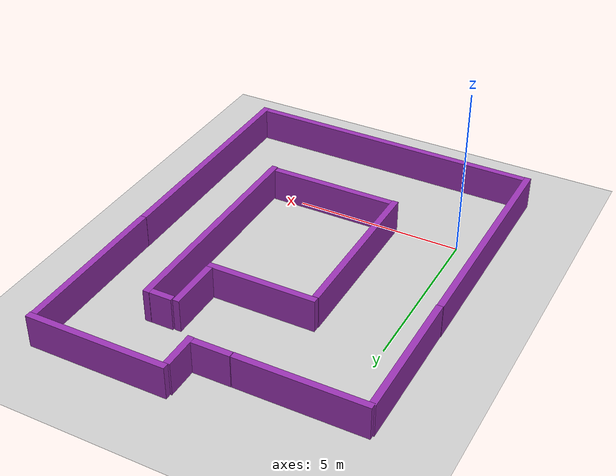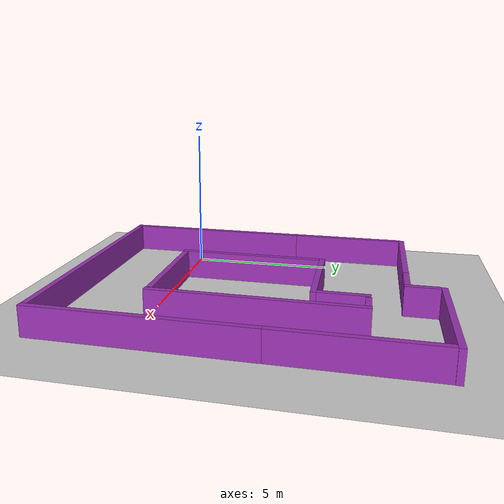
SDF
<sdf version="1.6">
 <world name="default">
  <light name="sun" type="directional">
   <pose>0 0 10 0 -0 0</pose>
   <diffuse>0.8 0.8 0.8 1</diffuse>
   <specular>0.1 0.1 0.1 1</specular>
   <attenuation>
    <range>1000</range>
    <constant>0.9</constant>
    <linear>0.01</linear>
    <quadratic>0.001</quadratic>
   </attenuation>
   <direction>-0.5 0.5 -1</direction>
  </light>
  <model name="ground_plane">
   <static>1</static>
   <link name="link">
    <collision name="collision">
     <geometry><plane><normal>0 0 1</normal><size>100 100</size></plane></geometry>
     <surface><friction><ode><mu>100</mu><mu2>50</mu2></ode></friction></surface>
    </collision>
    <visual name="visual">
     <cast_shadows>0</cast_shadows>
     <geometry><plane><normal>0 0 1</normal><size>100 100</size></plane></geometry>
     <material>
      <script><uri>file://media/materials/scripts/gazebo.material</uri><name>Gazebo/Grey</name></script>
     </material>
    </visual>
   </link>
  </model>
  <gravity>0 0 -9.8</gravity>
  <magnetic_field>6e-06 2.3e-05 -4.2e-05</magnetic_field>
  <atmosphere type="adiabatic"/>
  <physics name="default_physics" default="0" type="ode">
   <max_step_size>0.001</max_step_size>
   <real_time_factor>1</real_time_factor>
   <real_time_update_rate>1000</real_time_update_rate>
  </physics>
  <scene><ambient>0.4 0.4 0.4 1</ambient><background>0.7 0.7 0.7 1</background><shadows>1</shadows></scene>
  <spherical_coordinates>
   <surface_model>EARTH_WGS84</surface_model>
   <latitude_deg>0</latitude_deg>
   <longitude_deg>0</longitude_deg>
   <elevation>0</elevation>
   <heading_deg>0</heading_deg>
  </spherical_coordinates>
  <model name="wall_0">
   <link name="link">
    <inertial>
     <mass>20</mass>
     <inertia>
      <ixx>0.166667</ixx>
      <ixy>0</ixy>
      <ixz>0</ixz>
      <iyy>0.166667</iyy>
      <iyz>0</iyz>
      <izz>0.166667</izz>
     </inertia>
    </inertial>
    <visual name="visual">
     <geometry><box><size>0.194864 5.01167 1</size></box></geometry>
     <material>
      <script><name>Gazebo/Purple</name><uri>file://media/materials/scripts/gazebo.material</uri></script>
     </material>
    </visual>
    <collision name="collision">
     <geometry><box><size>0.194864 5.01167 1</size></box></geometry>
     <surface>
      <friction>
       <ode><mu>1</mu><mu2>1</mu2><fdir1>0 0 0</fdir1><slip1>0</slip1><slip2>0</slip2></ode>
       <torsional>
        <coefficient>1</coefficient>
        <patch_radius>0</patch_radius>
        <surface_radius>0</surface_radius>
        <use_patch_radius>1</use_patch_radius>
        <ode><slip>0</slip></ode>
       </torsional>
      </friction>
      <bounce><restitution_coefficient>0</restitution_coefficient><threshold>1e+06</threshold></bounce>
      <contact>
       <collide_without_contact>0</collide_without_contact>
       <collide_without_contact_bitmask>1</collide_without_contact_bitmask>
       <collide_bitmask>1</collide_bitmask>
       <ode>
        <soft_cfm>0</soft_cfm>
        <soft_erp>0.2</soft_erp>
        <kp>1e+13</kp>
        <kd>1</kd>
        <max_vel>0.01</max_vel>
        <min_depth>0</min_depth>
       </ode>
       <bullet>
        <split_impulse>1</split_impulse>
        <split_impulse_penetration_threshold>-0.01</split_impulse_penetration_threshold>
        <soft_cfm>0</soft_cfm>
        <soft_erp>0.2</soft_erp>
        <kp>1e+13</kp>
        <kd>1</kd>
       </bullet>
      </contact>
     </surface>
    </collision>
   </link>
   <static>1</static>
   <pose>2.00319 2.44327 0.496151 -0.000854 0 0.000614</pose>
  </model>
  <model name="wall_0_clone">
   <link name="link">
    <inertial>
     <mass>20</mass>
     <inertia>
      <ixx>0.166667</ixx>
      <ixy>0</ixy>
      <ixz>0</ixz>
      <iyy>0.166667</iyy>
      <iyz>0</iyz>
      <izz>0.166667</izz>
     </inertia>
    </inertial>
    <visual name="visual">
     <geometry><box><size>0.194864 6.84354 1</size></box></geometry>
     <material>
      <script><name>Gazebo/Purple</name><uri>file://media/materials/scripts/gazebo.material</uri></script>
     </material>
    </visual>
    <collision name="collision">
     <geometry><box><size>0.194864 6.84354 1</size></box></geometry>
     <surface>
      <friction>
       <ode><mu>1</mu><mu2>1</mu2><fdir1>0 0 0</fdir1><slip1>0</slip1><slip2>0</slip2></ode>
       <torsional>
        <coefficient>1</coefficient>
        <patch_radius>0</patch_radius>
        <surface_radius>0</surface_radius>
        <use_patch_radius>1</use_patch_radius>
        <ode><slip>0</slip></ode>
       </torsional>
      </friction>
      <bounce><restitution_coefficient>0</restitution_coefficient><threshold>1e+06</threshold></bounce>
      <contact>
       <collide_without_contact>0</collide_without_contact>
       <collide_without_contact_bitmask>1</collide_without_contact_bitmask>
       <collide_bitmask>1</collide_bitmask>
       <ode>
        <soft_cfm>0</soft_cfm>
        <soft_erp>0.2</soft_erp>
        <kp>1e+13</kp>
        <kd>1</kd>
        <max_vel>0.01</max_vel>
        <min_depth>0</min_depth>
       </ode>
       <bullet>
        <split_impulse>1</split_impulse>
        <split_impulse_penetration_threshold>-0.01</split_impulse_penetration_threshold>
        <soft_cfm>0</soft_cfm>
        <soft_erp>0.2</soft_erp>
        <kp>1e+13</kp>
        <kd>1</kd>
       </bullet>
      </contact>
     </surface>
    </collision>
   </link>
   <static>1</static>
   <pose>-0.973884 0.357165 0.496151 -0.000854 0 0.000614</pose>
  </model>
  <model name="wall_0_clone_0">
   <link name="link">
    <inertial>
     <mass>20</mass>
     <inertia>
      <ixx>0.166667</ixx>
      <ixy>0</ixy>
      <ixz>0</ixz>
      <iyy>0.166667</iyy>
      <iyz>0</iyz>
      <izz>0.166667</izz>
     </inertia>
    </inertial>
    <visual name="visual">
     <geometry><box><size>0.194864 8.79112 1</size></box></geometry>
     <material>
      <script><name>Gazebo/Purple</name><uri>file://media/materials/scripts/gazebo.material</uri></script>
     </material>
    </visual>
    <collision name="collision">
     <geometry><box><size>0.194864 8.79112 1</size></box></geometry>
     <surface>
      <friction>
       <ode><mu>1</mu><mu2>1</mu2><fdir1>0 0 0</fdir1><slip1>0</slip1><slip2>0</slip2></ode>
       <torsional>
        <coefficient>1</coefficient>
        <patch_radius>0</patch_radius>
        <surface_radius>0</surface_radius>
        <use_patch_radius>1</use_patch_radius>
        <ode><slip>0</slip></ode>
       </torsional>
      </friction>
      <bounce><restitution_coefficient>0</restitution_coefficient><threshold>1e+06</threshold></bounce>
      <contact>
       <collide_without_contact>0</collide_without_contact>
       <collide_without_contact_bitmask>1</collide_without_contact_bitmask>
       <collide_bitmask>1</collide_bitmask>
       <ode>
        <soft_cfm>0</soft_cfm>
        <soft_erp>0.2</soft_erp>
        <kp>1e+13</kp>
        <kd>1</kd>
        <max_vel>0.01</max_vel>
        <min_depth>0</min_depth>
       </ode>
       <bullet>
        <split_impulse>1</split_impulse>
        <split_impulse_penetration_threshold>-0.01</split_impulse_penetration_threshold>
        <soft_cfm>0</soft_cfm>
        <soft_erp>0.2</soft_erp>
        <kp>1e+13</kp>
        <kd>1</kd>
       </bullet>
      </contact>
     </surface>
    </collision>
   </link>
   <static>1</static>
   <pose>3.51666 -2.98106 0.496151 4e-06 -0.000854 -1.57514</pose>
  </model>
  <model name="wall_0_clone_clone">
   <link name="link">
    <inertial>
     <mass>20</mass>
     <inertia>
      <ixx>0.166667</ixx>
      <ixy>0</ixy>
      <ixz>0</ixz>
      <iyy>0.166667</iyy>
      <iyz>0</iyz>
      <izz>0.166667</izz>
     </inertia>
    </inertial>
    <visual name="visual">
     <geometry><box><size>0.194864 7.13181 1</size></box></geometry>
     <material>
      <script><name>Gazebo/Purple</name><uri>file://media/materials/scripts/gazebo.material</uri></script>
     </material>
    </visual>
    <collision name="collision">
     <geometry><box><size>0.194864 7.13181 1</size></box></geometry>
     <surface>
      <friction>
       <ode><mu>1</mu><mu2>1</mu2><fdir1>0 0 0</fdir1><slip1>0</slip1><slip2>0</slip2></ode>
       <torsional>
        <coefficient>1</coefficient>
        <patch_radius>0</patch_radius>
        <surface_radius>0</surface_radius>
        <use_patch_radius>1</use_patch_radius>
        <ode><slip>0</slip></ode>
       </torsional>
      </friction>
      <bounce><restitution_coefficient>0</restitution_coefficient><threshold>1e+06</threshold></bounce>
      <contact>
       <collide_without_contact>0</collide_without_contact>
       <collide_without_contact_bitmask>1</collide_without_contact_bitmask>
       <collide_bitmask>1</collide_bitmask>
       <ode>
        <soft_cfm>0</soft_cfm>
        <soft_erp>0.2</soft_erp>
        <kp>1e+13</kp>
        <kd>1</kd>
        <max_vel>0.01</max_vel>
        <min_depth>0</min_depth>
       </ode>
       <bullet>
        <split_impulse>1</split_impulse>
        <split_impulse_penetration_threshold>-0.01</split_impulse_penetration_threshold>
        <soft_cfm>0</soft_cfm>
        <soft_erp>0.2</soft_erp>
        <kp>1e+13</kp>
        <kd>1</kd>
       </bullet>
      </contact>
     </surface>
    </collision>
   </link>
   <static>1</static>
   <pose>7.99008 0.464173 0.49617 -0.000854 0 0.000614</pose>
  </model>
  <model name="wall_0_clone_1">
   <link name="link">
    <inertial>
     <mass>20</mass>
     <inertia>
      <ixx>0.166667</ixx>
      <ixy>0</ixy>
      <ixz>0</ixz>
      <iyy>0.166667</iyy>
      <iyz>0</iyz>
      <izz>0.166667</izz>
     </inertia>
    </inertial>
    <visual name="visual">
     <geometry><box><size>0.194864 3.77565 1</size></box></geometry>
     <material>
      <script><name>Gazebo/Purple</name><uri>file://media/materials/scripts/gazebo.material</uri></script>
     </material>
    </visual>
    <collision name="collision">
     <geometry><box><size>0.194864 3.77565 1</size></box></geometry>
     <surface>
      <friction>
       <ode><mu>1</mu><mu2>1</mu2><fdir1>0 0 0</fdir1><slip1>0</slip1><slip2>0</slip2></ode>
       <torsional>
        <coefficient>1</coefficient>
        <patch_radius>0</patch_radius>
        <surface_radius>0</surface_radius>
        <use_patch_radius>1</use_patch_radius>
        <ode><slip>0</slip></ode>
       </torsional>
      </friction>
      <bounce><restitution_coefficient>0</restitution_coefficient><threshold>1e+06</threshold></bounce>
      <contact>
       <collide_without_contact>0</collide_without_contact>
       <collide_without_contact_bitmask>1</collide_without_contact_bitmask>
       <collide_bitmask>1</collide_bitmask>
       <ode>
        <soft_cfm>0</soft_cfm>
        <soft_erp>0.2</soft_erp>
        <kp>1e+13</kp>
        <kd>1</kd>
        <max_vel>0.01</max_vel>
        <min_depth>0</min_depth>
       </ode>
       <bullet>
        <split_impulse>1</split_impulse>
        <split_impulse_penetration_threshold>-0.01</split_impulse_penetration_threshold>
        <soft_cfm>0</soft_cfm>
        <soft_erp>0.2</soft_erp>
        <kp>1e+13</kp>
        <kd>1</kd>
       </bullet>
      </contact>
     </surface>
    </collision>
   </link>
   <static>1</static>
   <pose>3.99078 0.051953 0.496151 -2e-06 -0.000854 -1.56829</pose>
  </model>
  <model name="wall_0_clone_2">
   <link name="link">
    <inertial>
     <mass>20</mass>
     <inertia>
      <ixx>0.166667</ixx>
      <ixy>0</ixy>
      <ixz>0</ixz>
      <iyy>0.166667</iyy>
      <iyz>0</iyz>
      <izz>0.166667</izz>
     </inertia>
    </inertial>
    <visual name="visual">
     <geometry><box><size>0.194864 6.89977 1</size></box></geometry>
     <material>
      <script><name>Gazebo/Purple</name><uri>file://media/materials/scripts/gazebo.material</uri></script>
     </material>
    </visual>
    <collision name="collision">
     <geometry><box><size>0.194864 6.89977 1</size></box></geometry>
     <surface>
      <friction>
       <ode><mu>1</mu><mu2>1</mu2><fdir1>0 0 0</fdir1><slip1>0</slip1><slip2>0</slip2></ode>
       <torsional>
        <coefficient>1</coefficient>
        <patch_radius>0</patch_radius>
        <surface_radius>0</surface_radius>
        <use_patch_radius>1</use_patch_radius>
        <ode><slip>0</slip></ode>
       </torsional>
      </friction>
      <bounce><restitution_coefficient>0</restitution_coefficient><threshold>1e+06</threshold></bounce>
      <contact>
       <collide_without_contact>0</collide_without_contact>
       <collide_without_contact_bitmask>1</collide_without_contact_bitmask>
       <collide_bitmask>1</collide_bitmask>
       <ode>
        <soft_cfm>0</soft_cfm>
        <soft_erp>0.2</soft_erp>
        <kp>1e+13</kp>
        <kd>1</kd>
        <max_vel>0.01</max_vel>
        <min_depth>0</min_depth>
       </ode>
       <bullet>
        <split_impulse>1</split_impulse>
        <split_impulse_penetration_threshold>-0.01</split_impulse_penetration_threshold>
        <soft_cfm>0</soft_cfm>
        <soft_erp>0.2</soft_erp>
        <kp>1e+13</kp>
        <kd>1</kd>
       </bullet>
      </contact>
     </surface>
    </collision>
   </link>
   <static>1</static>
   <pose>5.99472 3.38096 0.496151 -0.000854 0 0.000614</pose>
  </model>
  <model name="wall_0_clone_2_clone">
   <link name="link">
    <inertial>
     <mass>20</mass>
     <inertia>
      <ixx>0.166667</ixx>
      <ixy>0</ixy>
      <ixz>0</ixz>
      <iyy>0.166667</iyy>
      <iyz>0</iyz>
      <izz>0.166667</izz>
     </inertia>
    </inertial>
    <visual name="visual">
     <geometry><box><size>0.194864 5.01167 1</size></box></geometry>
     <material>
      <script><name>Gazebo/Purple</name><uri>file://media/materials/scripts/gazebo.material</uri></script>
     </material>
    </visual>
    <collision name="collision">
     <geometry><box><size>0.194864 5.01167 1</size></box></geometry>
     <surface>
      <friction>
       <ode><mu>1</mu><mu2>1</mu2><fdir1>0 0 0</fdir1><slip1>0</slip1><slip2>0</slip2></ode>
       <torsional>
        <coefficient>1</coefficient>
        <patch_radius>0</patch_radius>
        <surface_radius>0</surface_radius>
        <use_patch_radius>1</use_patch_radius>
        <ode><slip>0</slip></ode>
       </torsional>
      </friction>
      <bounce><restitution_coefficient>0</restitution_coefficient><threshold>1e+06</threshold></bounce>
      <contact>
       <collide_without_contact>0</collide_without_contact>
       <collide_without_contact_bitmask>1</collide_without_contact_bitmask>
       <collide_bitmask>1</collide_bitmask>
       <ode>
        <soft_cfm>0</soft_cfm>
        <soft_erp>0.2</soft_erp>
        <kp>1e+13</kp>
        <kd>1</kd>
        <max_vel>0.01</max_vel>
        <min_depth>0</min_depth>
       </ode>
       <bullet>
        <split_impulse>1</split_impulse>
        <split_impulse_penetration_threshold>-0.01</split_impulse_penetration_threshold>
        <soft_cfm>0</soft_cfm>
        <soft_erp>0.2</soft_erp>
        <kp>1e+13</kp>
        <kd>1</kd>
       </bullet>
      </contact>
     </surface>
    </collision>
   </link>
   <static>1</static>
   <pose>7.9897 6.532 0.496151 -0.000854 0 0.000614</pose>
  </model>
  <model name="wall_0_clone_1_clone">
   <link name="link">
    <inertial>
     <mass>20</mass>
     <inertia>
      <ixx>0.166667</ixx>
      <ixy>0</ixy>
      <ixz>0</ixz>
      <iyy>0.166667</iyy>
      <iyz>0</iyz>
      <izz>0.166667</izz>
     </inertia>
    </inertial>
    <visual name="visual">
     <geometry><box><size>0.194864 4.17266 1</size></box></geometry>
     <material>
      <script><name>Gazebo/Purple</name><uri>file://media/materials/scripts/gazebo.material</uri></script>
     </material>
    </visual>
    <collision name="collision">
     <geometry><box><size>0.194864 4.17266 1</size></box></geometry>
     <surface>
      <friction>
       <ode><mu>1</mu><mu2>1</mu2><fdir1>0 0 0</fdir1><slip1>0</slip1><slip2>0</slip2></ode>
       <torsional>
        <coefficient>1</coefficient>
        <patch_radius>0</patch_radius>
        <surface_radius>0</surface_radius>
        <use_patch_radius>1</use_patch_radius>
        <ode><slip>0</slip></ode>
       </torsional>
      </friction>
      <bounce><restitution_coefficient>0</restitution_coefficient><threshold>1e+06</threshold></bounce>
      <contact>
       <collide_without_contact>0</collide_without_contact>
       <collide_without_contact_bitmask>1</collide_without_contact_bitmask>
       <collide_bitmask>1</collide_bitmask>
       <ode>
        <soft_cfm>0</soft_cfm>
        <soft_erp>0.2</soft_erp>
        <kp>1e+13</kp>
        <kd>1</kd>
        <max_vel>0.01</max_vel>
        <min_depth>0</min_depth>
       </ode>
       <bullet>
        <split_impulse>1</split_impulse>
        <split_impulse_penetration_threshold>-0.01</split_impulse_penetration_threshold>
        <soft_cfm>0</soft_cfm>
        <soft_erp>0.2</soft_erp>
        <kp>1e+13</kp>
        <kd>1</kd>
       </bullet>
      </contact>
     </surface>
    </collision>
   </link>
   <static>1</static>
   <pose>6.01832 8.98961 0.496151 -2e-06 -0.000854 -1.56829</pose>
  </model>
  <model name="wall_0_clone_1_clone_clone">
   <link name="link">
    <inertial>
     <mass>20</mass>
     <inertia>
      <ixx>0.166667</ixx>
      <ixy>0</ixy>
      <ixz>0</ixz>
      <iyy>0.166667</iyy>
      <iyz>0</iyz>
      <izz>0.166667</izz>
     </inertia>
    </inertial>
    <visual name="visual">
     <geometry><box><size>0.194864 1.12427 1</size></box></geometry>
     <material>
      <script><name>Gazebo/Purple</name><uri>file://media/materials/scripts/gazebo.material</uri></script>
     </material>
    </visual>
    <collision name="collision">
     <geometry><box><size>0.194864 1.12427 1</size></box></geometry>
     <surface>
      <friction>
       <ode><mu>1</mu><mu2>1</mu2><fdir1>0 0 0</fdir1><slip1>0</slip1><slip2>0</slip2></ode>
       <torsional>
        <coefficient>1</coefficient>
        <patch_radius>0</patch_radius>
        <surface_radius>0</surface_radius>
        <use_patch_radius>1</use_patch_radius>
        <ode><slip>0</slip></ode>
       </torsional>
      </friction>
      <bounce><restitution_coefficient>0</restitution_coefficient><threshold>1e+06</threshold></bounce>
      <contact>
       <collide_without_contact>0</collide_without_contact>
       <collide_without_contact_bitmask>1</collide_without_contact_bitmask>
       <collide_bitmask>1</collide_bitmask>
       <ode>
        <soft_cfm>0</soft_cfm>
        <soft_erp>0.2</soft_erp>
        <kp>1e+13</kp>
        <kd>1</kd>
        <max_vel>0.01</max_vel>
        <min_depth>0</min_depth>
       </ode>
       <bullet>
        <split_impulse>1</split_impulse>
        <split_impulse_penetration_threshold>-0.01</split_impulse_penetration_threshold>
        <soft_cfm>0</soft_cfm>
        <soft_erp>0.2</soft_erp>
        <kp>1e+13</kp>
        <kd>1</kd>
       </bullet>
      </contact>
     </surface>
    </collision>
   </link>
   <static>1</static>
   <pose>3.98319 8.33408 0.496151 0.000854 -1e-06 -3.14078</pose>
  </model>
  <model name="wall_0_clone_1_clone_clone_clone">
   <link name="link">
    <inertial>
     <mass>20</mass>
     <inertia>
      <ixx>0.166667</ixx>
      <ixy>0</ixy>
      <ixz>0</ixz>
      <iyy>0.166667</iyy>
      <iyz>0</iyz>
      <izz>0.166667</izz>
     </inertia>
    </inertial>
    <visual name="visual">
     <geometry><box><size>0.194864 1.12427 1</size></box></geometry>
     <material>
      <script><name>Gazebo/Purple</name><uri>file://media/materials/scripts/gazebo.material</uri></script>
     </material>
    </visual>
    <collision name="collision">
     <geometry><box><size>0.194864 1.12427 1</size></box></geometry>
     <surface>
      <friction>
       <ode><mu>1</mu><mu2>1</mu2><fdir1>0 0 0</fdir1><slip1>0</slip1><slip2>0</slip2></ode>
       <torsional>
        <coefficient>1</coefficient>
        <patch_radius>0</patch_radius>
        <surface_radius>0</surface_radius>
        <use_patch_radius>1</use_patch_radius>
        <ode><slip>0</slip></ode>
       </torsional>
      </friction>
      <bounce><restitution_coefficient>0</restitution_coefficient><threshold>1e+06</threshold></bounce>
      <contact>
       <collide_without_contact>0</collide_without_contact>
       <collide_without_contact_bitmask>1</collide_without_contact_bitmask>
       <collide_bitmask>1</collide_bitmask>
       <ode>
        <soft_cfm>0</soft_cfm>
        <soft_erp>0.2</soft_erp>
        <kp>1e+13</kp>
        <kd>1</kd>
        <max_vel>0.01</max_vel>
        <min_depth>0</min_depth>
       </ode>
       <bullet>
        <split_impulse>1</split_impulse>
        <split_impulse_penetration_threshold>-0.01</split_impulse_penetration_threshold>
        <soft_cfm>0</soft_cfm>
        <soft_erp>0.2</soft_erp>
        <kp>1e+13</kp>
        <kd>1</kd>
       </bullet>
      </contact>
     </surface>
    </collision>
   </link>
   <static>1</static>
   <pose>3.32737 7.87852 0.496155 2e-06 0.000854 1.57332</pose>
  </model>
  <model name="wall_0_clone_1_clone_0">
   <link name="link">
    <inertial>
     <mass>20</mass>
     <inertia>
      <ixx>0.166667</ixx>
      <ixy>0</ixy>
      <ixz>0</ixz>
      <iyy>0.166667</iyy>
      <iyz>0</iyz>
      <izz>0.166667</izz>
     </inertia>
    </inertial>
    <visual name="visual">
     <geometry><box><size>0.194864 3.26075 1</size></box></geometry>
     <material>
      <script><name>Gazebo/Purple</name><uri>file://media/materials/scripts/gazebo.material</uri></script>
     </material>
    </visual>
    <collision name="collision">
     <geometry><box><size>0.194864 3.26075 1</size></box></geometry>
     <surface>
      <friction>
       <ode><mu>1</mu><mu2>1</mu2><fdir1>0 0 0</fdir1><slip1>0</slip1><slip2>0</slip2></ode>
       <torsional>
        <coefficient>1</coefficient>
        <patch_radius>0</patch_radius>
        <surface_radius>0</surface_radius>
        <use_patch_radius>1</use_patch_radius>
        <ode><slip>0</slip></ode>
       </torsional>
      </friction>
      <bounce><restitution_coefficient>0</restitution_coefficient><threshold>1e+06</threshold></bounce>
      <contact>
       <collide_without_contact>0</collide_without_contact>
       <collide_without_contact_bitmask>1</collide_without_contact_bitmask>
       <collide_bitmask>1</collide_bitmask>
       <ode>
        <soft_cfm>0</soft_cfm>
        <soft_erp>0.2</soft_erp>
        <kp>1e+13</kp>
        <kd>1</kd>
        <max_vel>0.01</max_vel>
        <min_depth>0</min_depth>
       </ode>
       <bullet>
        <split_impulse>1</split_impulse>
        <split_impulse_penetration_threshold>-0.01</split_impulse_penetration_threshold>
        <soft_cfm>0</soft_cfm>
        <soft_erp>0.2</soft_erp>
        <kp>1e+13</kp>
        <kd>1</kd>
       </bullet>
      </contact>
     </surface>
    </collision>
   </link>
   <static>1</static>
   <pose>3.54938 5.05542 0.496151 -2e-06 -0.000854 -1.56829</pose>
  </model>
  <model name="wall_0_clone_1_clone_clone_clone_0">
   <link name="link">
    <inertial>
     <mass>20</mass>
     <inertia>
      <ixx>0.166667</ixx>
      <ixy>0</ixy>
      <ixz>0</ixz>
      <iyy>0.166667</iyy>
      <iyz>0</iyz>
      <izz>0.166667</izz>
     </inertia>
    </inertial>
    <visual name="visual">
     <geometry><box><size>0.194864 1.64284 1</size></box></geometry>
     <material>
      <script><name>Gazebo/Purple</name><uri>file://media/materials/scripts/gazebo.material</uri></script>
     </material>
    </visual>
    <collision name="collision">
     <geometry><box><size>0.194864 1.64284 1</size></box></geometry>
     <surface>
      <friction>
       <ode><mu>1</mu><mu2>1</mu2><fdir1>0 0 0</fdir1><slip1>0</slip1><slip2>0</slip2></ode>
       <torsional>
        <coefficient>1</coefficient>
        <patch_radius>0</patch_radius>
        <surface_radius>0</surface_radius>
        <use_patch_radius>1</use_patch_radius>
        <ode><slip>0</slip></ode>
       </torsional>
      </friction>
      <bounce><restitution_coefficient>0</restitution_coefficient><threshold>1e+06</threshold></bounce>
      <contact>
       <collide_without_contact>0</collide_without_contact>
       <collide_without_contact_bitmask>1</collide_without_contact_bitmask>
       <collide_bitmask>1</collide_bitmask>
       <ode>
        <soft_cfm>0</soft_cfm>
        <soft_erp>0.2</soft_erp>
        <kp>1e+13</kp>
        <kd>1</kd>
        <max_vel>0.01</max_vel>
        <min_depth>0</min_depth>
       </ode>
       <bullet>
        <split_impulse>1</split_impulse>
        <split_impulse_penetration_threshold>-0.01</split_impulse_penetration_threshold>
        <soft_cfm>0</soft_cfm>
        <soft_erp>0.2</soft_erp>
        <kp>1e+13</kp>
        <kd>1</kd>
       </bullet>
      </contact>
     </surface>
    </collision>
   </link>
   <static>1</static>
   <pose>5.09192 5.96705 0.496151 0.000854 -1e-06 -3.14078</pose>
  </model>
  <model name="wall_0_clone_1_clone_clone_clone_clone">
   <link name="link">
    <inertial>
     <mass>20</mass>
     <inertia>
      <ixx>0.166667</ixx>
      <ixy>0</ixy>
      <ixz>0</ixz>
      <iyy>0.166667</iyy>
      <iyz>0</iyz>
      <izz>0.166667</izz>
     </inertia>
    </inertial>
    <visual name="visual">
     <geometry><box><size>0.194864 0.684707 1</size></box></geometry>
     <material>
      <script><name>Gazebo/Purple</name><uri>file://media/materials/scripts/gazebo.material</uri></script>
     </material>
    </visual>
    <collision name="collision">
     <geometry><box><size>0.194864 0.684707 1</size></box></geometry>
     <surface>
      <friction>
       <ode><mu>1</mu><mu2>1</mu2><fdir1>0 0 0</fdir1><slip1>0</slip1><slip2>0</slip2></ode>
       <torsional>
        <coefficient>1</coefficient>
        <patch_radius>0</patch_radius>
        <surface_radius>0</surface_radius>
        <use_patch_radius>1</use_patch_radius>
        <ode><slip>0</slip></ode>
       </torsional>
      </friction>
      <bounce><restitution_coefficient>0</restitution_coefficient><threshold>1e+06</threshold></bounce>
      <contact>
       <collide_without_contact>0</collide_without_contact>
       <collide_without_contact_bitmask>1</collide_without_contact_bitmask>
       <collide_bitmask>1</collide_bitmask>
       <ode>
        <soft_cfm>0</soft_cfm>
        <soft_erp>0.2</soft_erp>
        <kp>1e+13</kp>
        <kd>1</kd>
        <max_vel>0.01</max_vel>
        <min_depth>0</min_depth>
       </ode>
       <bullet>
        <split_impulse>1</split_impulse>
        <split_impulse_penetration_threshold>-0.01</split_impulse_penetration_threshold>
        <soft_cfm>0</soft_cfm>
        <soft_erp>0.2</soft_erp>
        <kp>1e+13</kp>
        <kd>1</kd>
       </bullet>
      </contact>
     </surface>
    </collision>
   </link>
   <static>1</static>
   <pose>5.56611 6.72252 0.485958 2e-06 0.000854 1.57332</pose>
  </model>
  <model name="wall_0_clone_1_clone_1">
   <link name="link">
    <inertial>
     <mass>20</mass>
     <inertia>
      <ixx>0.166667</ixx>
      <ixy>0</ixy>
      <ixz>0</ixz>
      <iyy>0.166667</iyy>
      <iyz>0</iyz>
      <izz>0.166667</izz>
     </inertia>
    </inertial>
    <visual name="visual">
     <geometry><box><size>0.194864 3.77565 1</size></box></geometry>
     <material>
      <script><name>Gazebo/Purple</name><uri>file://media/materials/scripts/gazebo.material</uri></script>
     </material>
    </visual>
    <collision name="collision">
     <geometry><box><size>0.194864 3.77565 1</size></box></geometry>
     <surface>
      <friction>
       <ode><mu>1</mu><mu2>1</mu2><fdir1>0 0 0</fdir1><slip1>0</slip1><slip2>0</slip2></ode>
       <torsional>
        <coefficient>1</coefficient>
        <patch_radius>0</patch_radius>
        <surface_radius>0</surface_radius>
        <use_patch_radius>1</use_patch_radius>
        <ode><slip>0</slip></ode>
       </torsional>
      </friction>
      <bounce><restitution_coefficient>0</restitution_coefficient><threshold>1e+06</threshold></bounce>
      <contact>
       <collide_without_contact>0</collide_without_contact>
       <collide_without_contact_bitmask>1</collide_without_contact_bitmask>
       <collide_bitmask>1</collide_bitmask>
       <ode>
        <soft_cfm>0</soft_cfm>
        <soft_erp>0.2</soft_erp>
        <kp>1e+13</kp>
        <kd>1</kd>
        <max_vel>0.01</max_vel>
        <min_depth>0</min_depth>
       </ode>
       <bullet>
        <split_impulse>1</split_impulse>
        <split_impulse_penetration_threshold>-0.01</split_impulse_penetration_threshold>
        <soft_cfm>0</soft_cfm>
        <soft_erp>0.2</soft_erp>
        <kp>1e+13</kp>
        <kd>1</kd>
       </bullet>
      </contact>
     </surface>
    </collision>
   </link>
   <static>1</static>
   <pose>0.862235 7.86761 0.496151 -2e-06 -0.000854 -1.56829</pose>
  </model>
  <model name="wall_0_clone_3">
   <link name="link">
    <inertial>
     <mass>20</mass>
     <inertia>
      <ixx>0.166667</ixx>
      <ixy>0</ixy>
      <ixz>0</ixz>
      <iyy>0.166667</iyy>
      <iyz>0</iyz>
      <izz>0.166667</izz>
     </inertia>
    </inertial>
    <visual name="visual">
     <geometry><box><size>0.194864 4.06524 1</size></box></geometry>
     <material>
      <script><name>Gazebo/Purple</name><uri>file://media/materials/scripts/gazebo.material</uri></script>
     </material>
    </visual>
    <collision name="collision">
     <geometry><box><size>0.194864 4.06524 1</size></box></geometry>
     <surface>
      <friction>
       <ode><mu>1</mu><mu2>1</mu2><fdir1>0 0 0</fdir1><slip1>0</slip1><slip2>0</slip2></ode>
       <torsional>
        <coefficient>1</coefficient>
        <patch_radius>0</patch_radius>
        <surface_radius>0</surface_radius>
        <use_patch_radius>1</use_patch_radius>
        <ode><slip>0</slip></ode>
       </torsional>
      </friction>
      <bounce><restitution_coefficient>0</restitution_coefficient><threshold>1e+06</threshold></bounce>
      <contact>
       <collide_without_contact>0</collide_without_contact>
       <collide_without_contact_bitmask>1</collide_without_contact_bitmask>
       <collide_bitmask>1</collide_bitmask>
       <ode>
        <soft_cfm>0</soft_cfm>
        <soft_erp>0.2</soft_erp>
        <kp>1e+13</kp>
        <kd>1</kd>
        <max_vel>0.01</max_vel>
        <min_depth>0</min_depth>
       </ode>
       <bullet>
        <split_impulse>1</split_impulse>
        <split_impulse_penetration_threshold>-0.01</split_impulse_penetration_threshold>
        <soft_cfm>0</soft_cfm>
        <soft_erp>0.2</soft_erp>
        <kp>1e+13</kp>
        <kd>1</kd>
       </bullet>
      </contact>
     </surface>
    </collision>
   </link>
   <static>1</static>
   <pose>-0.966049 5.79529 0.496151 -0.000854 0 0.000614</pose>
  </model>
 </world>
</sdf>
